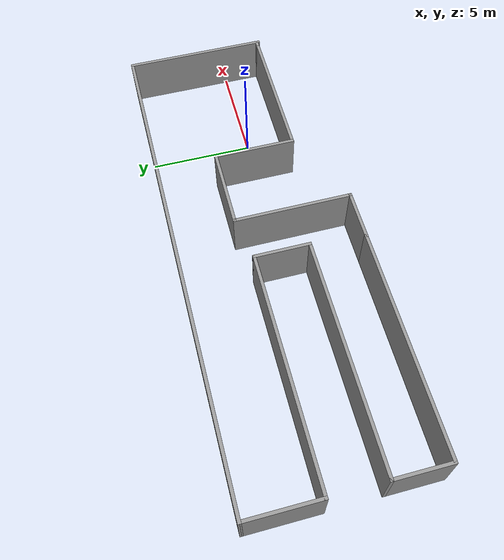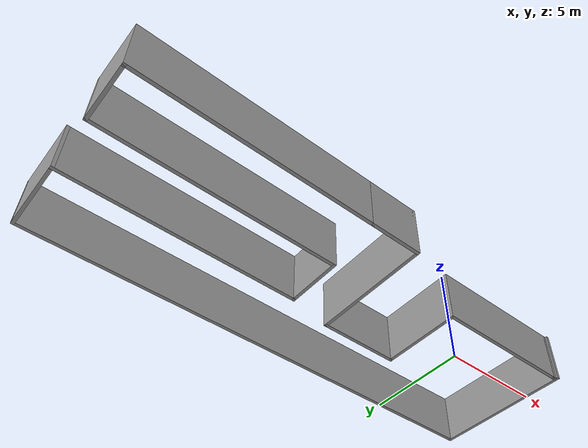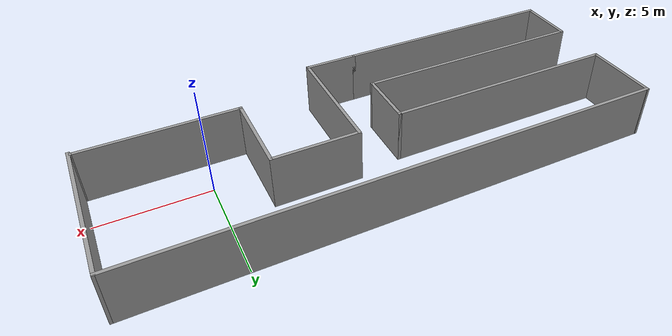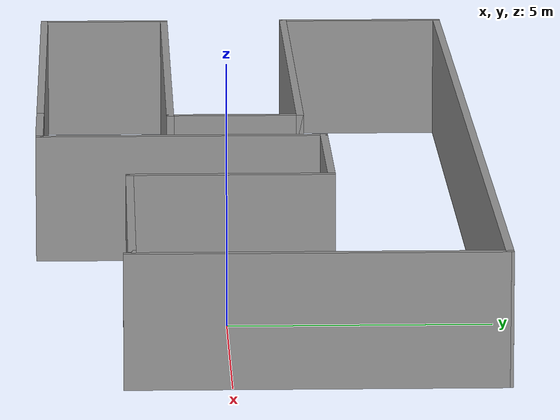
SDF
<?xml version='1.0'?>
<sdf version='1.6'>
  <model name='whd_r1'>
    <pose frame=''>-6.925 0.725055 0 0 -0 0</pose>
    <link name='Wall_10'>
      <collision name='Wall_10_Collision'>
        <geometry>
          <box>
            <size>2.75 0.15 2.5</size>
          </box>
        </geometry>
        <pose frame=''>0 0 1.25 0 -0 0</pose>
      </collision>
      <visual name='Wall_10_Visual'>
        <pose frame=''>0 0 1.25 0 -0 0</pose>
        <geometry>
          <box>
            <size>2.75 0.15 2.5</size>
          </box>
        </geometry>
        <material>
          <script>
            <uri>file://media/materials/scripts/gazebo.material</uri>
            <name>Gazebo/Grey</name>
          </script>
          <ambient>1 1 1 1</ambient>
        </material>
      </visual>
      <pose frame=''>-1.075 -0.375055 0 0 0 -1.5708</pose>
    </link>
    <link name='Wall_11'>
      <collision name='Wall_11_Collision'>
        <geometry>
          <box>
            <size>11 0.15 2.5</size>
          </box>
        </geometry>
        <pose frame=''>0 0 1.25 0 -0 0</pose>
      </collision>
      <visual name='Wall_11_Visual'>
        <pose frame=''>0 0 1.25 0 -0 0</pose>
        <geometry>
          <box>
            <size>11 0.15 2.5</size>
          </box>
        </geometry>
        <material>
          <script>
            <uri>file://media/materials/scripts/gazebo.material</uri>
            <name>Gazebo/Grey</name>
          </script>
          <ambient>1 1 1 1</ambient>
        </material>
      </visual>
      <pose frame=''>-6.5 -1.67505 0 0 -0 3.14159</pose>
    </link>
    <link name='Wall_12'>
      <collision name='Wall_12_Collision'>
        <geometry>
          <box>
            <size>2.75 0.15 2.5</size>
          </box>
        </geometry>
        <pose frame=''>0 0 1.25 0 -0 0</pose>
      </collision>
      <visual name='Wall_12_Visual'>
        <pose frame=''>0 0 1.25 0 -0 0</pose>
        <geometry>
          <box>
            <size>2.75 0.15 2.5</size>
          </box>
        </geometry>
        <material>
          <script>
            <uri>file://media/materials/scripts/gazebo.material</uri>
            <name>Gazebo/Grey</name>
          </script>
          <ambient>1 1 1 1</ambient>
        </material>
      </visual>
      <pose frame=''>-11.925 -2.97505 0 0 0 -1.5708</pose>
    </link>
    <link name='Wall_13'>
      <collision name='Wall_13_Collision'>
        <geometry>
          <box>
            <size>10.75 0.15 2.5</size>
          </box>
        </geometry>
        <pose frame=''>0 0 1.25 0 -0 0</pose>
      </collision>
      <visual name='Wall_13_Visual'>
        <pose frame=''>0 0 1.25 0 -0 0</pose>
        <geometry>
          <box>
            <size>10.75 0.15 2.5</size>
          </box>
        </geometry>
        <material>
          <script>
            <uri>file://media/materials/scripts/gazebo.material</uri>
            <name>Gazebo/Grey</name>
          </script>
          <ambient>1 1 1 1</ambient>
        </material>
      </visual>
      <pose frame=''>-6.625 -4.27506 0 0 -0 0</pose>
    </link>
    <link name='Wall_14'>
      <collision name='Wall_14_Collision'>
        <geometry>
          <box>
            <size>2.5 0.15 2.5</size>
          </box>
        </geometry>
        <pose frame=''>0 0 1.25 0 -0 0</pose>
      </collision>
      <visual name='Wall_14_Visual'>
        <pose frame=''>0 0 1.25 0 -0 0</pose>
        <geometry>
          <box>
            <size>2.5 0.15 2.5</size>
          </box>
        </geometry>
        <material>
          <script>
            <uri>file://media/materials/scripts/gazebo.material</uri>
            <name>Gazebo/Grey</name>
          </script>
          <ambient>1 1 1 1</ambient>
        </material>
      </visual>
      <pose frame=''>-0.149999 -4.27506 0 0 -0 0</pose>
    </link>
    <link name='Wall_15'>
      <collision name='Wall_15_Collision'>
        <geometry>
          <box>
            <size>5.75 0.15 2.5</size>
          </box>
        </geometry>
        <pose frame=''>0 0 1.25 0 -0 0</pose>
      </collision>
      <visual name='Wall_15_Visual'>
        <pose frame=''>0 0 1.25 0 -0 0</pose>
        <geometry>
          <box>
            <size>5.75 0.15 2.5</size>
          </box>
        </geometry>
        <material>
          <script>
            <uri>file://media/materials/scripts/gazebo.material</uri>
            <name>Gazebo/Grey</name>
          </script>
          <ambient>1 1 1 1</ambient>
        </material>
      </visual>
      <pose frame=''>1.025 -1.47506 0 0 -0 1.5708</pose>
    </link>
    <link name='Wall_16'>
      <collision name='Wall_16_Collision'>
        <geometry>
          <box>
            <size>4 0.15 2.5</size>
          </box>
        </geometry>
        <pose frame=''>0 0 1.25 0 -0 0</pose>
      </collision>
      <visual name='Wall_16_Visual'>
        <pose frame=''>0 0 1.25 0 -0 0</pose>
        <geometry>
          <box>
            <size>4 0.15 2.5</size>
          </box>
        </geometry>
        <material>
          <script>
            <uri>file://media/materials/scripts/gazebo.material</uri>
            <name>Gazebo/Grey</name>
          </script>
          <ambient>1 1 1 1</ambient>
        </material>
      </visual>
      <pose frame=''>2.95 1.32495 0 0 -0 0</pose>
    </link>
    <link name='Wall_17'>
      <collision name='Wall_17_Collision'>
        <geometry>
          <box>
            <size>4 0.15 2.5</size>
          </box>
        </geometry>
        <pose frame=''>0 0 1.25 0 -0 0</pose>
      </collision>
      <visual name='Wall_17_Visual'>
        <pose frame=''>0 0 1.25 0 -0 0</pose>
        <geometry>
          <box>
            <size>4 0.15 2.5</size>
          </box>
        </geometry>
        <material>
          <script>
            <uri>file://media/materials/scripts/gazebo.material</uri>
            <name>Gazebo/Grey</name>
          </script>
          <ambient>1 1 1 1</ambient>
        </material>
      </visual>
      <pose frame=''>4.875 -0.600055 0 0 0 -1.5708</pose>
    </link>
    <link name='Wall_18'>
      <collision name='Wall_18_Collision'>
        <geometry>
          <box>
            <size>7 0.15 2.5</size>
          </box>
        </geometry>
        <pose frame=''>0 0 1.25 0 -0 0</pose>
      </collision>
      <visual name='Wall_18_Visual'>
        <pose frame=''>0 0 1.25 0 -0 0</pose>
        <geometry>
          <box>
            <size>7 0.15 2.5</size>
          </box>
        </geometry>
        <material>
          <script>
            <uri>file://media/materials/scripts/gazebo.material</uri>
            <name>Gazebo/Grey</name>
          </script>
          <ambient>1 1 1 1</ambient>
        </material>
      </visual>
      <pose frame=''>8.3 -2.52506 0 0 -0 0</pose>
    </link>
    <link name='Wall_19'>
      <collision name='Wall_19_Collision'>
        <geometry>
          <box>
            <size>0.25 0.15 2.5</size>
          </box>
        </geometry>
        <pose frame=''>0 0 1.25 0 -0 0</pose>
      </collision>
      <visual name='Wall_19_Visual'>
        <pose frame=''>0 0 1.25 0 -0 0</pose>
        <geometry>
          <box>
            <size>0.25 0.15 2.5</size>
          </box>
        </geometry>
        <material>
          <script>
            <uri>file://media/materials/scripts/gazebo.material</uri>
            <name>Gazebo/Grey</name>
          </script>
          <ambient>1 1 1 1</ambient>
        </material>
      </visual>
      <pose frame=''>11.775 -2.52506 0 0 -0 0</pose>
    </link>
    <link name='Wall_4'>
      <collision name='Wall_4_Collision'>
        <geometry>
          <box>
            <size>7 0.15 2.5</size>
          </box>
        </geometry>
        <pose frame=''>0 0 1.25 0 -0 0</pose>
      </collision>
      <visual name='Wall_4_Visual'>
        <pose frame=''>0 0 1.25 0 -0 0</pose>
        <geometry>
          <box>
            <size>7 0.15 2.5</size>
          </box>
        </geometry>
        <material>
          <script>
            <uri>file://media/materials/scripts/gazebo.material</uri>
            <name>Gazebo/Grey</name>
          </script>
          <ambient>1 1 1 1</ambient>
        </material>
      </visual>
      <pose frame=''>11.925 0.814945 0 0 0 -1.5708</pose>
    </link>
    <link name='Wall_7'>
      <collision name='Wall_7_Collision'>
        <geometry>
          <box>
            <size>24 0.15 2.5</size>
          </box>
        </geometry>
        <pose frame=''>0 0 1.25 0 -0 0</pose>
      </collision>
      <visual name='Wall_7_Visual'>
        <pose frame=''>0 0 1.25 0 -0 0</pose>
        <geometry>
          <box>
            <size>24 0.15 2.5</size>
          </box>
        </geometry>
        <material>
          <script>
            <uri>file://media/materials/scripts/gazebo.material</uri>
            <name>Gazebo/Grey</name>
          </script>
          <ambient>1 1 1 1</ambient>
        </material>
      </visual>
      <pose frame=''>0 4.25744 0 0 -0 3.14012</pose>
    </link>
    <link name='Wall_8'>
      <collision name='Wall_8_Collision'>
        <geometry>
          <box>
            <size>3.5 0.15 2.5</size>
          </box>
        </geometry>
        <pose frame=''>0 0 1.25 0 -0 0</pose>
      </collision>
      <visual name='Wall_8_Visual'>
        <pose frame=''>0 0 1.25 0 -0 0</pose>
        <geometry>
          <box>
            <size>3.5 0.15 2.5</size>
          </box>
        </geometry>
        <material>
          <script>
            <uri>file://media/materials/scripts/gazebo.material</uri>
            <name>Gazebo/Grey</name>
          </script>
          <ambient>1 1 1 1</ambient>
        </material>
      </visual>
      <pose frame=''>-11.925 2.59994 0 0 0 -1.5708</pose>
    </link>
    <link name='Wall_9'>
      <collision name='Wall_9_Collision'>
        <geometry>
          <box>
            <size>11 0.15 2.5</size>
          </box>
        </geometry>
        <pose frame=''>0 0 1.25 0 -0 0</pose>
      </collision>
      <visual name='Wall_9_Visual'>
        <pose frame=''>0 0 1.25 0 -0 0</pose>
        <geometry>
          <box>
            <size>11 0.15 2.5</size>
          </box>
        </geometry>
        <material>
          <script>
            <uri>file://media/materials/scripts/gazebo.material</uri>
            <name>Gazebo/Grey</name>
          </script>
          <ambient>1 1 1 1</ambient>
        </material>
      </visual>
      <pose frame=''>-6.5 0.924945 0 0 -0 0</pose>
    </link>
    <static>1</static>
  </model>
</sdf>
